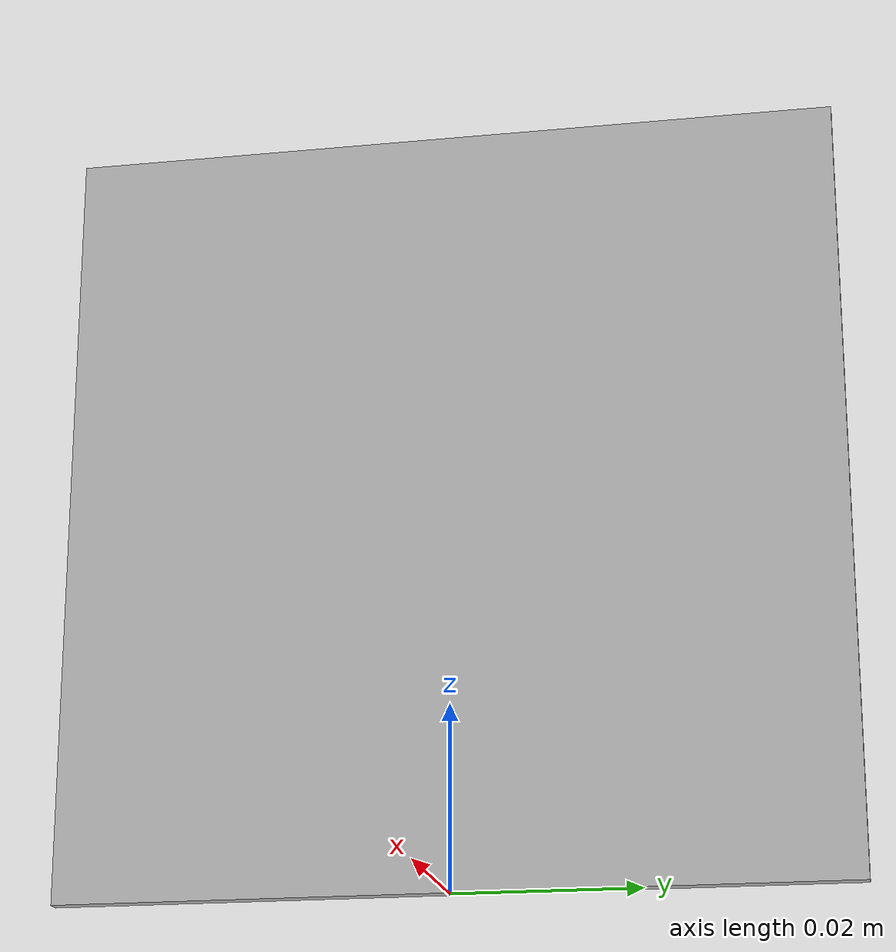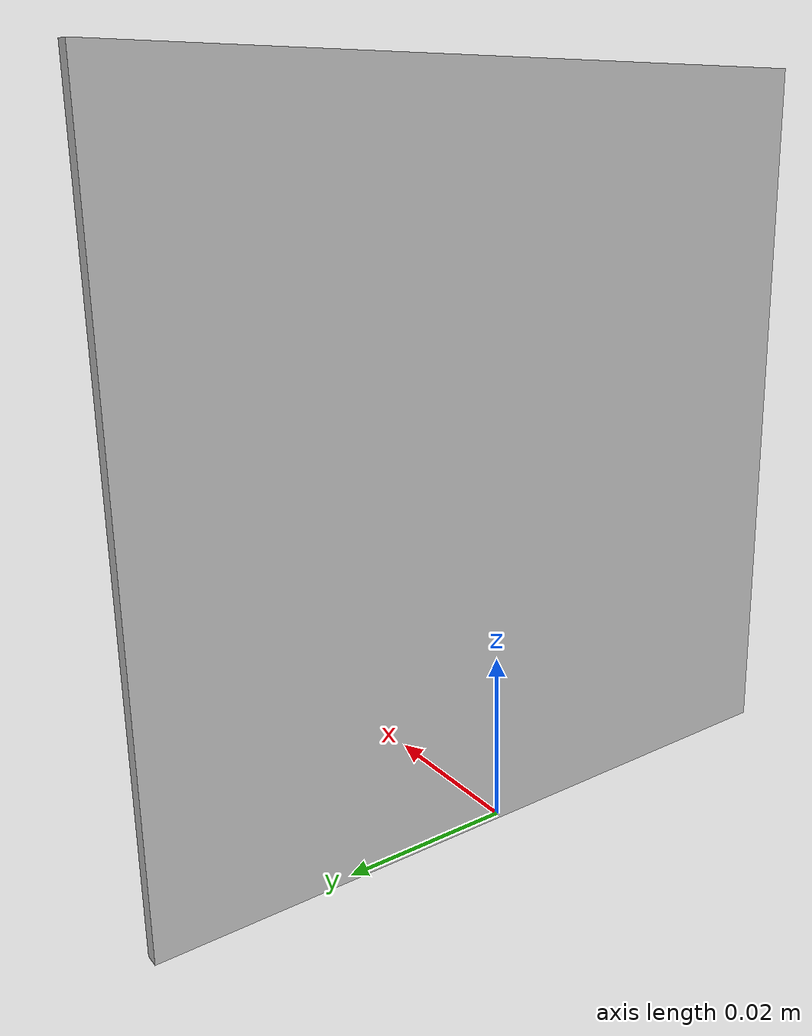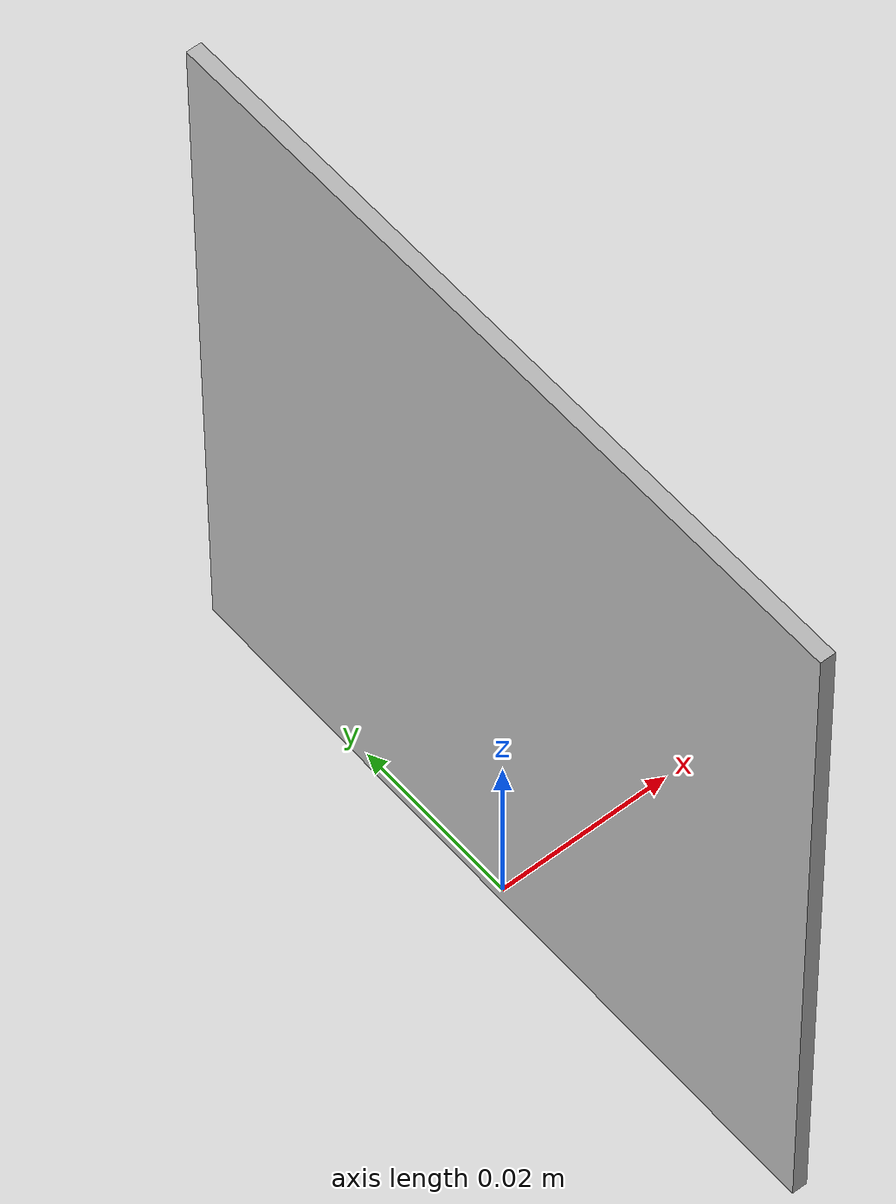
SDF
<?xml version="1.0" ?><sdf version="1.5">
  <model name="tag36_11_00008">
    <static>true</static>
    <link name="link">
      <visual name="visual">
        <geometry>
          <mesh>
            <uri>model://tag36_11_00008/meshes/tag36_11_00008.dae</uri>
          <scale>0.17 0.17 0.17</scale></mesh>
        </geometry>
      </visual>
    </link>
  </model>
</sdf>
